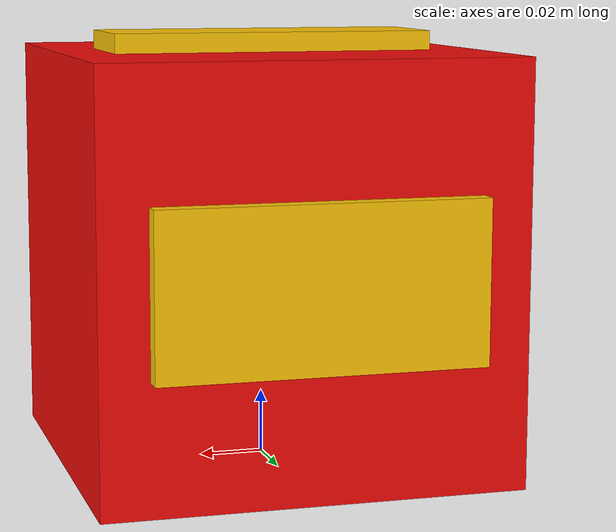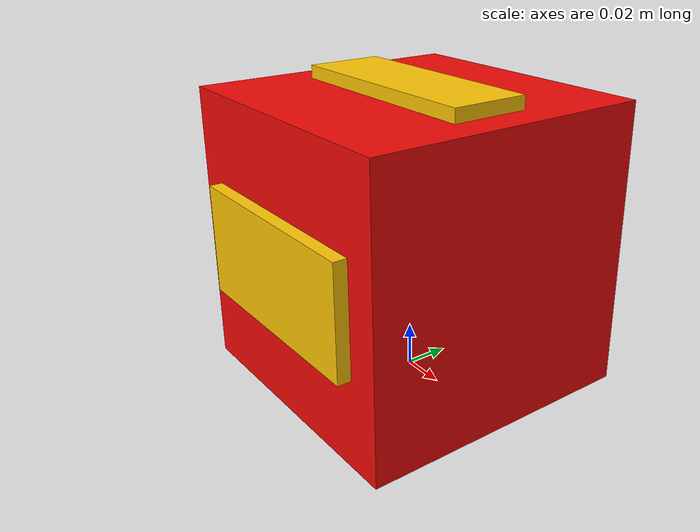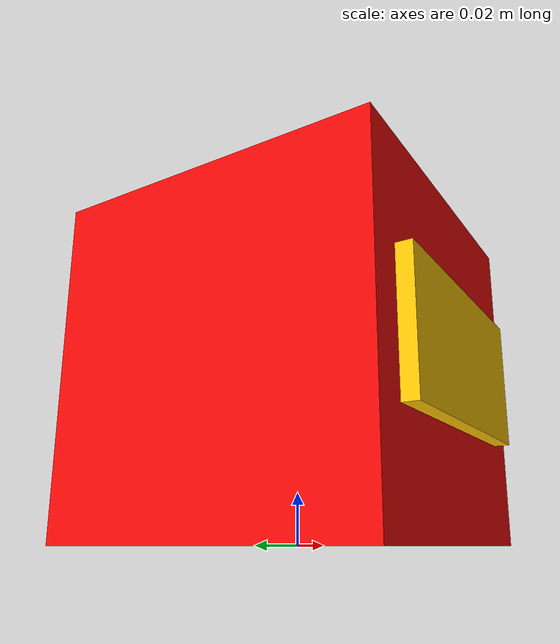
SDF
<?xml version="1.0"?>
<sdf version="1.7">
  <model name="room315_visual_obstacle_marker">
    <static>true</static>

    <link name="rail_obstacle_marker_link">
      <pose>0 0 0 0 0 0</pose>

      <visual name="obstacle_body_visual">
        <pose>0 0 0.065 0 0 0</pose>
        <geometry>
          <box>
            <size>0.13 0.13 0.13</size>
          </box>
        </geometry>
        <material>
          <ambient>0.62 0.02 0.02 1</ambient>
          <diffuse>0.95 0.04 0.03 1</diffuse>
          <specular>0.25 0.25 0.25 1</specular>
        </material>
      </visual>

      <visual name="obstacle_top_warning_stripe">
        <pose>0 0 0.133 0 0 0</pose>
        <geometry>
          <box>
            <size>0.10 0.035 0.006</size>
          </box>
        </geometry>
        <material>
          <ambient>0.8 0.55 0.0 1</ambient>
          <diffuse>1.0 0.78 0.02 1</diffuse>
        </material>
      </visual>

      <visual name="obstacle_front_warning_stripe">
        <pose>0 -0.068 0.065 0 0 0</pose>
        <geometry>
          <box>
            <size>0.10 0.006 0.05</size>
          </box>
        </geometry>
        <material>
          <ambient>0.8 0.55 0.0 1</ambient>
          <diffuse>1.0 0.78 0.02 1</diffuse>
        </material>
      </visual>

      <visual name="obstacle_back_warning_stripe">
        <pose>0 0.068 0.065 0 0 0</pose>
        <geometry>
          <box>
            <size>0.10 0.006 0.05</size>
          </box>
        </geometry>
        <material>
          <ambient>0.8 0.55 0.0 1</ambient>
          <diffuse>1.0 0.78 0.02 1</diffuse>
        </material>
      </visual>
    </link>
  </model>
</sdf>
